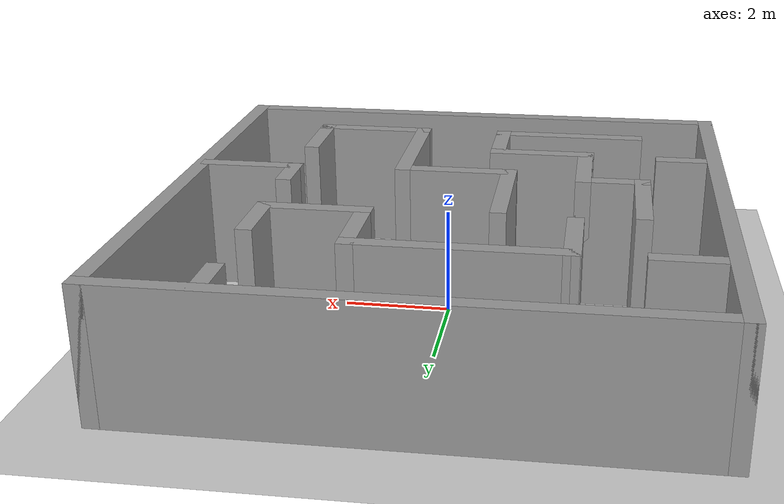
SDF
<?xml version="1.0" ?>
<sdf version="1.7">
  <world name="default">
    <light name='sun' type='directional'>
      <cast_shadows>1</cast_shadows>
      <pose>0 0 10 0 -0 0</pose>
      <diffuse>0.8 0.8 0.8 1</diffuse>
      <specular>0.2 0.2 0.2 1</specular>
      <attenuation>
        <range>1000</range>
        <constant>0.9</constant>
        <linear>0.01</linear>
        <quadratic>0.001</quadratic>
      </attenuation>
      <direction>-0.5 0.1 -0.9</direction>
    </light>

    <model name='ground_plane'>
      <static>1</static>
      <link name='link'>
        <collision name='collision'>
          <geometry>
            <plane>
              <normal>0 0 1</normal>
              <size>100 100</size>
            </plane>
          </geometry>
          <surface>
            <friction>
              <ode>
                <mu>100</mu>
                <mu2>50</mu2>
              </ode>
            </friction>
          </surface>
        </collision>
        <visual name='visual'>
          <cast_shadows>0</cast_shadows>
          <geometry>
            <plane>
              <normal>0 0 1</normal>
              <size>100 100</size>
            </plane>
          </geometry>
          <material>
            <script>
              <uri>file://media/materials/scripts/gazebo.material</uri>
              <name>Gazebo/Grey</name>
            </script>
          </material>
        </visual>
      </link>
    </model>

    <gravity>0 0 -9.8</gravity>
    <physics name='default_physics' default='0' type='ode'>
      <max_step_size>0.001</max_step_size>
      <real_time_factor>1</real_time_factor>
      <real_time_update_rate>1000</real_time_update_rate>
    </physics>

    <model name='compact_maze'>
      <pose>0 0 0 0 -0 0</pose>
      <static>1</static> <link name='Wall_11'>
        <collision name='Wall_11_Collision'>
          <geometry> <box> <size>1.75 0.3 2.5</size> </box> </geometry>
          <pose>0 0 1.25 0 -0 0</pose>
        </collision>
        <visual name='Wall_11_Visual'>
          <pose>0 0 1.25 0 -0 0</pose>
          <geometry> <box> <size>1.75 0.3 2.5</size> </box> </geometry>
          <material>
            <script> <uri>file://media/materials/scripts/gazebo.material</uri> <name>Gazebo/Grey</name> </script>
            <ambient>1 1 1 1</ambient>
          </material>
        </visual>
        <pose>-2.39025 2.159 0 0 -0 -1.5708</pose>
      </link>

      <link name='Wall_13'>
        <collision name='Wall_13_Collision'>
          <geometry> <box> <size>3.98466 0.3 2.5</size> </box> </geometry>
          <pose>0 0 1.25 0 -0 0</pose>
        </collision>
        <visual name='Wall_13_Visual'>
          <pose>0 0 1.25 0 -0 0</pose>
          <geometry> <box> <size>3.98466 0.3 2.5</size> </box> </geometry>
          <material>
            <script> <uri>file://media/materials/scripts/gazebo.material</uri> <name>Gazebo/Grey</name> </script>
            <ambient>1 1 1 1</ambient>
          </material>
        </visual>
        <pose>-0.530331 2.8835 0 0 -0 -0.000271</pose>
      </link>

      <link name='Wall_14'>
        <collision name='Wall_14_Collision'>
          <geometry> <box> <size>1.80643 0.3 2.5</size> </box> </geometry>
          <pose>0 0 1.25 0 -0 0</pose>
        </collision>
        <visual name='Wall_14_Visual'>
          <pose>0 0 1.25 0 -0 0</pose>
          <geometry> <box> <size>1.80643 0.3 2.5</size> </box> </geometry>
          <material>
            <script> <uri>file://media/materials/scripts/gazebo.material</uri> <name>Gazebo/Grey</name> </script>
            <ambient>1 1 1 1</ambient>
          </material>
        </visual>
        <pose>1.312 2.13 0 0 -0 -1.5708</pose>
      </link>

      <link name='Wall_15'>
        <collision name='Wall_15_Collision'>
          <geometry> <box> <size>2.11516 0.3 2.5</size> </box> </geometry>
          <pose>0 0 1.25 0 -0 0</pose>
        </collision>
        <visual name='Wall_15_Visual'>
          <pose>0 0 1.25 0 -0 0</pose>
          <geometry> <box> <size>2.11516 0.3 2.5</size> </box> </geometry>
          <material>
            <script> <uri>file://media/materials/scripts/gazebo.material</uri> <name>Gazebo/Grey</name> </script>
            <ambient>1 1 1 1</ambient>
          </material>
        </visual>
        <pose>2.2195 1.377 0 0 -0 0</pose>
      </link>

      <link name='Wall_16'>
        <collision name='Wall_16_Collision'>
          <geometry> <box> <size>1.39444 0.3 2.5</size> </box> </geometry>
          <pose>0 0 1.25 0 -0 0</pose>
        </collision>
        <visual name='Wall_16_Visual'>
          <pose>0 0 1.25 0 -0 0</pose>
          <geometry> <box> <size>1.39444 0.3 2.5</size> </box> </geometry>
          <material>
            <script> <uri>file://media/materials/scripts/gazebo.material</uri> <name>Gazebo/Grey</name> </script>
            <ambient>1 1 1 1</ambient>
          </material>
        </visual>
        <pose>3.127 1.92422 0 0 -0 1.5708</pose>
      </link>

      <link name='Wall_19'>
        <collision name='Wall_19_Collision'>
          <geometry> <box> <size>1 0.3 2.5</size> </box> </geometry>
          <pose>0 0 1.25 0 -0 0</pose>
        </collision>
        <visual name='Wall_19_Visual'>
          <pose>0 0 1.25 0 -0 0</pose>
          <geometry> <box> <size>1 0.3 2.5</size> </box> </geometry>
          <material>
            <script> <uri>file://media/materials/scripts/gazebo.material</uri> <name>Gazebo/Grey</name> </script>
            <ambient>1 1 1 1</ambient>
          </material>
        </visual>
        <pose>3.11923 4.564 0 0 -0 -1.5708</pose>
      </link>

      <link name='Wall_21'>
        <collision name='Wall_21_Collision'>
          <geometry> <box> <size>2.019 0.3 2.5</size> </box> </geometry>
          <pose>0 0 1.25 0 -0 0</pose>
        </collision>
        <visual name='Wall_21_Visual'>
          <pose>0 0 1.25 0 -0 0</pose>
          <geometry> <box> <size>2.019 0.3 2.5</size> </box> </geometry>
          <material>
            <script> <uri>file://media/materials/scripts/gazebo.material</uri> <name>Gazebo/Grey</name> </script>
            <ambient>1 1 1 1</ambient>
          </material>
        </visual>
        <pose>4.0175 -0.876201 0 0 -0 3.14159</pose>
      </link>

      <link name='Wall_22'>
        <collision name='Wall_22_Collision'>
          <geometry> <box> <size>1 0.3 2.5</size> </box> </geometry>
          <pose>0 0 1.25 0 -0 0</pose>
        </collision>
        <visual name='Wall_22_Visual'>
          <pose>0 0 1.25 0 -0 0</pose>
          <geometry> <box> <size>1 0.3 2.5</size> </box> </geometry>
          <material>
            <script> <uri>file://media/materials/scripts/gazebo.material</uri> <name>Gazebo/Grey</name> </script>
            <ambient>1 1 1 1</ambient>
          </material>
        </visual>
        <pose>3.158 -0.512901 0 0 -0 1.5708</pose>
      </link>

      <link name='Wall_24'>
        <collision name='Wall_24_Collision'>
          <geometry> <box> <size>1.68108 0.3 2.5</size> </box> </geometry>
          <pose>0 0 1.25 0 -0 0</pose>
        </collision>
        <visual name='Wall_24_Visual'>
          <pose>0 0 1.25 0 -0 0</pose>
          <geometry> <box> <size>1.68108 0.3 2.5</size> </box> </geometry>
          <material>
            <script> <uri>file://media/materials/scripts/gazebo.material</uri> <name>Gazebo/Grey</name> </script>
            <ambient>1 1 1 1</ambient>
          </material>
        </visual>
        <pose>3.12 -2.9435 0 0 -0 -1.5708</pose>
      </link>

      <link name='Wall_25'>
        <collision name='Wall_25_Collision'>
          <geometry> <box> <size>2.39629 0.3 2.5</size> </box> </geometry>
          <pose>0 0 1.25 0 -0 0</pose>
        </collision>
        <visual name='Wall_25_Visual'>
          <pose>0 0 1.25 0 -0 0</pose>
          <geometry> <box> <size>2.39629 0.3 2.5</size> </box> </geometry>
          <material>
            <script> <uri>file://media/materials/scripts/gazebo.material</uri> <name>Gazebo/Grey</name> </script>
            <ambient>1 1 1 1</ambient>
          </material>
        </visual>
        <pose>2.072 -3.634 0 0 -0 3.14159</pose>
      </link>

      <link name='Wall_26'>
        <collision name='Wall_26_Collision'>
          <geometry> <box> <size>2.896 0.3 2.5</size> </box> </geometry>
          <pose>0 0 1.25 0 -0 0</pose>
        </collision>
        <visual name='Wall_26_Visual'>
          <pose>0 0 1.25 0 -0 0</pose>
          <geometry> <box> <size>2.896 0.3 2.5</size> </box> </geometry>
          <material>
            <script> <uri>file://media/materials/scripts/gazebo.material</uri> <name>Gazebo/Grey</name> </script>
            <ambient>1 1 1 1</ambient>
          </material>
        </visual>
        <pose>1.024 -2.336 0 0 -0 1.5708</pose>
      </link>

      <link name='Wall_27'>
        <collision name='Wall_27_Collision'>
          <geometry> <box> <size>2.358 0.3 2.5</size> </box> </geometry>
          <pose>0 0 1.25 0 -0 0</pose>
        </collision>
        <visual name='Wall_27_Visual'>
          <pose>0 0 1.25 0 -0 0</pose>
          <geometry> <box> <size>2.358 0.3 2.5</size> </box> </geometry>
          <material>
            <script> <uri>file://media/materials/scripts/gazebo.material</uri> <name>Gazebo/Grey</name> </script>
            <ambient>1 1 1 1</ambient>
          </material>
        </visual>
        <pose>-0.005 -1.038 0 0 -0 3.14159</pose>
      </link>

      <link name='Wall_28'>
        <collision name='Wall_28_Collision'>
          <geometry> <box> <size>2.435 0.3 2.5</size> </box> </geometry>
          <pose>0 0 1.25 0 -0 0</pose>
        </collision>
        <visual name='Wall_28_Visual'>
          <pose>0 0 1.25 0 -0 0</pose>
          <geometry> <box> <size>2.435 0.3 2.5</size> </box> </geometry>
          <material>
            <script> <uri>file://media/materials/scripts/gazebo.material</uri> <name>Gazebo/Grey</name> </script>
            <ambient>1 1 1 1</ambient>
          </material>
        </visual>
        <pose>-1.0342 0.0295 0 0 -0 1.57098</pose>
      </link>

      <link name='Wall_31'>
        <collision name='Wall_31_Collision'>
          <geometry> <box> <size>2.1496 0.3 2.5</size> </box> </geometry>
          <pose>0 0 1.25 0 -0 0</pose>
        </collision>
        <visual name='Wall_31_Visual'>
          <pose>0 0 1.25 0 -0 0</pose>
          <geometry> <box> <size>2.1496 0.3 2.5</size> </box> </geometry>
          <material>
            <script> <uri>file://media/materials/scripts/gazebo.material</uri> <name>Gazebo/Grey</name> </script>
            <ambient>1 1 1 1</ambient>
          </material>
        </visual>
        <pose>-3.567 0.164 0 0 -0 -1.5708</pose>
      </link>

      <link name='Wall_32'>
        <collision name='Wall_32_Collision'>
          <geometry> <box> <size>1.38623 0.3 2.5</size> </box> </geometry>
          <pose>0 0 1.25 0 -0 0</pose>
        </collision>
        <visual name='Wall_32_Visual'>
          <pose>0 0 1.25 0 -0 0</pose>
          <geometry> <box> <size>1.38623 0.3 2.5</size> </box> </geometry>
          <material>
            <script> <uri>file://media/materials/scripts/gazebo.material</uri> <name>Gazebo/Grey</name> </script>
            <ambient>1 1 1 1</ambient>
          </material>
        </visual>
        <pose>-3.02388 -0.761 0 0 -0 0</pose>
      </link>

      <link name='Wall_33'>
        <collision name='Wall_33_Collision'>
          <geometry> <box> <size>1.886 0.3 2.5</size> </box> </geometry>
          <pose>0 0 1.25 0 -0 0</pose>
        </collision>
        <visual name='Wall_33_Visual'>
          <pose>0 0 1.25 0 -0 0</pose>
          <geometry> <box> <size>1.886 0.3 2.5</size> </box> </geometry>
          <material>
            <script> <uri>file://media/materials/scripts/gazebo.material</uri> <name>Gazebo/Grey</name> </script>
            <ambient>1 1 1 1</ambient>
          </material>
        </visual>
        <pose>-2.46318 -1.554 0 0 -0 -1.5708</pose>
      </link>

      <link name='Wall_34'>
        <collision name='Wall_34_Collision'>
          <geometry> <box> <size>2.08277 0.3 2.5</size> </box> </geometry>
          <pose>0 0 1.25 0 -0 0</pose>
        </collision>
        <visual name='Wall_34_Visual'>
          <pose>0 0 1.25 0 -0 0</pose>
          <geometry> <box> <size>2.08277 0.3 2.5</size> </box> </geometry>
          <material>
            <script> <uri>file://media/materials/scripts/gazebo.material</uri> <name>Gazebo/Grey</name> </script>
            <ambient>1 1 1 1</ambient>
          </material>
        </visual>
        <pose>-1.58938 -2.347 0 0 -0 0</pose>
      </link>

      <link name='Wall_35'>
        <collision name='Wall_35_Collision'>
          <geometry> <box> <size>1.587 0.3 2.5</size> </box> </geometry>
          <pose>0 0 1.25 0 -0 0</pose>
        </collision>
        <visual name='Wall_35_Visual'>
          <pose>0 0 1.25 0 -0 0</pose>
          <geometry> <box> <size>1.587 0.3 2.5</size> </box> </geometry>
          <material>
            <script> <uri>file://media/materials/scripts/gazebo.material</uri> <name>Gazebo/Grey</name> </script>
            <ambient>1 1 1 1</ambient>
          </material>
        </visual>
        <pose>-0.698 -2.9905 0 0 -0 -1.5708</pose>
      </link>

      <link name='Wall_36'>
        <collision name='Wall_36_Collision'>
          <geometry> <box> <size>3.06 0.3 2.5</size> </box> </geometry>
          <pose>0 0 1.25 0 -0 0</pose>
        </collision>
        <visual name='Wall_36_Visual'>
          <pose>0 0 1.25 0 -0 0</pose>
          <geometry> <box> <size>3.06 0.3 2.5</size> </box> </geometry>
          <material>
            <script> <uri>file://media/materials/scripts/gazebo.material</uri> <name>Gazebo/Grey</name> </script>
            <ambient>1 1 1 1</ambient>
          </material>
        </visual>
        <pose>-2.078 -3.634 0 0 -0 3.14159</pose>
      </link>

      <link name='Wall_38'>
        <collision name='Wall_38_Collision'>
          <geometry> <box> <size>1.25 0.3 2.5</size> </box> </geometry>
          <pose>0 0 1.25 0 -0 0</pose>
        </collision>
        <visual name='Wall_38_Visual'>
          <pose>0 0 1.25 0 -0 0</pose>
          <geometry> <box> <size>1.25 0.3 2.5</size> </box> </geometry>
          <material>
            <script> <uri>file://media/materials/scripts/gazebo.material</uri> <name>Gazebo/Grey</name> </script>
            <ambient>1 1 1 1</ambient>
          </material>
        </visual>
        <pose>-4.48118 -2.23548 0 0 -0 0</pose>
      </link>

      <link name='Wall_4'>
        <collision name='Wall_4_Collision'>
          <geometry> <box> <size>10.3 0.3 2.5</size> </box> </geometry>
          <pose>0 0 1.25 0 -0 0</pose>
        </collision>
        <visual name='Wall_4_Visual'>
          <pose>0 0 1.25 0 -0 0</pose>
          <geometry> <box> <size>10.3 0.3 2.5</size> </box> </geometry>
          <material>
            <script> <uri>file://media/materials/scripts/gazebo.material</uri> <name>Gazebo/Grey</name> </script>
            <ambient>1 1 1 1</ambient>
          </material>
        </visual>
        <pose>-5 0 0 0 -0 1.5708</pose>
      </link>

      <link name='Wall_5'>
        <collision name='Wall_5_Collision'>
          <geometry> <box> <size>10.3 0.3 2.5</size> </box> </geometry>
          <pose>0 0 1.25 0 -0 0</pose>
        </collision>
        <visual name='Wall_5_Visual'>
          <pose>0 0 1.25 0 -0 0</pose>
          <geometry> <box> <size>10.3 0.3 2.5</size> </box> </geometry>
          <material>
            <script> <uri>file://media/materials/scripts/gazebo.material</uri> <name>Gazebo/Grey</name> </script>
            <ambient>1 1 1 1</ambient>
          </material>
        </visual>
        <pose>0 5 0 0 -0 0</pose>
      </link>

      <link name='Wall_6'>
        <collision name='Wall_6_Collision'>
          <geometry> <box> <size>10.3 0.3 2.5</size> </box> </geometry>
          <pose>0 0 1.25 0 -0 0</pose>
        </collision>
        <visual name='Wall_6_Visual'>
          <pose>0 0 1.25 0 -0 0</pose>
          <geometry> <box> <size>10.3 0.3 2.5</size> </box> </geometry>
          <material>
            <script> <uri>file://media/materials/scripts/gazebo.material</uri> <name>Gazebo/Grey</name> </script>
            <ambient>1 1 1 1</ambient>
          </material>
        </visual>
        <pose>5 0 0 0 -0 -1.5708</pose>
      </link>

      <link name='Wall_7'>
        <collision name='Wall_7_Collision'>
          <geometry> <box> <size>10.3 0.3 2.5</size> </box> </geometry>
          <pose>0 0 1.25 0 -0 0</pose>
        </collision>
        <visual name='Wall_7_Visual'>
          <pose>0 0 1.25 0 -0 0</pose>
          <geometry> <box> <size>10.3 0.3 2.5</size> </box> </geometry>
          <material>
            <script> <uri>file://media/materials/scripts/gazebo.material</uri> <name>Gazebo/Grey</name> </script>
            <ambient>1 1 1 1</ambient>
          </material>
        </visual>
        <pose>0 -5 0 0 -0 3.14159</pose>
      </link>

      <link name='Wall_9'>
        <collision name='Wall_9_Collision'>
          <geometry> <box> <size>1.5 0.3 2.5</size> </box> </geometry>
          <pose>0 0 1.25 0 -0 0</pose>
        </collision>
        <visual name='Wall_9_Visual'>
          <pose>0 0 1.25 0 -0 0</pose>
          <geometry> <box> <size>1.5 0.3 2.5</size> </box> </geometry>
          <material>
            <script> <uri>file://media/materials/scripts/gazebo.material</uri> <name>Gazebo/Grey</name> </script>
            <ambient>1 1 1 1</ambient>
          </material>
        </visual>
        <pose>-4.332 2.89 0 0 -0 0</pose>
      </link>
    </model>
  </world>
</sdf>
